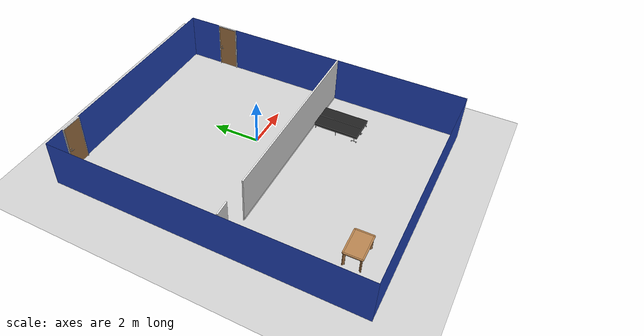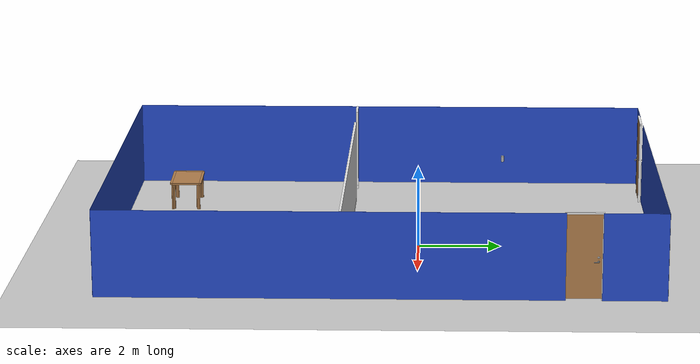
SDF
<sdf version="1.6">
 <world name="default">
  <physics name="default_physics" default="0" type="ode">
   <max_step_size>0.001</max_step_size>
   <real_time_factor>1</real_time_factor>
   <real_time_update_rate>1000</real_time_update_rate>
  </physics>
  <light name="sun" type="directional">
   <pose>0 0 10 0 -0 0</pose>
   <diffuse>0.8 0.8 0.8 1</diffuse>
   <specular>0.2 0.2 0.2 1</specular>
   <attenuation>
    <range>1000</range>
    <constant>0.9</constant>
    <linear>0.01</linear>
    <quadratic>0.001</quadratic>
   </attenuation>
   <direction>-0.5 0.1 -0.9</direction>
  </light>
  <model name="ground_plane">
   <static>1</static>
   <link name="link">
    <collision name="collision">
     <geometry><plane><normal>0 0 1</normal><size>100 100</size></plane></geometry>
     <surface>
      <contact><collide_bitmask>65535</collide_bitmask></contact>
      <friction><ode><mu>100</mu><mu2>50</mu2></ode></friction>
     </surface>
    </collision>
    <visual name="visual">
     <cast_shadows>0</cast_shadows>
     <geometry><plane><normal>0 0 1</normal><size>100 100</size></plane></geometry>
     <material>
      <script><uri>file://media/materials/scripts/gazebo.material</uri><name>Gazebo/Grey</name></script>
     </material>
    </visual>
   </link>
  </model>
  <gravity>0 0 -9.8</gravity>
  <magnetic_field>6e-06 2.3e-05 -4.2e-05</magnetic_field>
  <atmosphere type="adiabatic"/>
  <scene><ambient>0.4 0.4 0.4 1</ambient><background>0.7 0.7 0.7 1</background><shadows>1</shadows></scene>
  <spherical_coordinates>
   <surface_model>EARTH_WGS84</surface_model>
   <latitude_deg>0</latitude_deg>
   <longitude_deg>0</longitude_deg>
   <elevation>0</elevation>
   <heading_deg>0</heading_deg>
  </spherical_coordinates>
  <model name="apartment_wall_collision">
   <link name="link">
    <inertial>
     <mass>50</mass>
     <inertia><ixx>1</ixx><ixy>0</ixy><ixz>0</ixz><iyy>1</iyy><iyz>0</iyz><izz>1</izz></inertia>
    </inertial>
    <visual name="wall_x00y00_x00y15">
     <pose>-0.002 6.59 1.04 0 -0 0</pose>
     <geometry><box><size>0.002 13.2 2.08</size></box></geometry>
     <material>
      <script>
       <uri>model://base_materials/color/scripts</uri>
       <name>hsr_color/cornflowerblue_transparency1</name>
      </script>
     </material>
    </visual>
    <collision name="wall_x00y00_x00y15">
     <pose>-0.002 6.59 1.04 0 -0 0</pose>
     <geometry><box><size>0.002 13.2 2.08</size></box></geometry>
    </collision>
    <visual name="wall_x00y00_x13y00">
     <pose>5.0375 -0.002 1.04 0 -0 0</pose>
     <geometry><box><size>10.08 0.002 2.08</size></box></geometry>
     <material>
      <script>
       <uri>model://base_materials/color/scripts</uri>
       <name>hsr_color/cornflowerblue_transparency1</name>
      </script>
     </material>
    </visual>
    <collision name="wall_x00y00_x13y00">
     <pose>5.0375 -0.002 1.04 0 -0 0</pose>
     <geometry><box><size>10.08 0.002 2.08</size></box></geometry>
    </collision>
    <visual name="wall_x13y00_x13y12">
     <pose>10.077 5.42 1.04 0 -0 0</pose>
     <geometry><box><size>0.002 10.84 2.08</size></box></geometry>
     <material>
      <script>
       <uri>model://base_materials/color/scripts</uri>
       <name>hsr_color/cornflowerblue_transparency1</name>
      </script>
     </material>
    </visual>
    <collision name="wall_x13y00_x13y12">
     <pose>10.077 5.42 1.04 0 -0 0</pose>
     <geometry><box><size>0.002 10.84 2.08</size></box></geometry>
    </collision>
    <visual name="wall_x13y14_x13y16">
     <pose>10.077 12.43 1.04 0 -0 0</pose>
     <geometry><box><size>0.002 1.5 2.08</size></box></geometry>
     <material>
      <script>
       <uri>model://base_materials/color/scripts</uri>
       <name>hsr_color/cornflowerblue_transparency1</name>
      </script>
     </material>
    </visual>
    <collision name="wall_x13y14_x13y16">
     <pose>10.077 12.43 1.04 0 -0 0</pose>
     <geometry><box><size>0.002 1.5 2.08</size></box></geometry>
    </collision>
    <visual name="wall_x00y16_x01y16">
     <pose>0.4525 13.182 1.04 0 -0 0</pose>
     <geometry><box><size>0.904 0.002 2.08</size></box></geometry>
     <material>
      <script>
       <uri>model://base_materials/color/scripts</uri>
       <name>hsr_color/cornflowerblue_transparency1</name>
      </script>
     </material>
    </visual>
    <collision name="wall_x00y16_x01y16">
     <pose>0.4525 13.182 1.04 0 -0 0</pose>
     <geometry><box><size>0.904 0.002 2.08</size></box></geometry>
    </collision>
    <visual name="wall_x03y16_x13y16">
     <pose>5.948 13.182 1.04 0 -0 0</pose>
     <geometry><box><size>8.3 0.002 2.08</size></box></geometry>
     <material>
      <script>
       <uri>model://base_materials/color/scripts</uri>
       <name>hsr_color/cornflowerblue_transparency1</name>
      </script>
     </material>
    </visual>
    <collision name="wall_x03y16_x13y16">
     <pose>5.948 13.182 1.04 0 -0 0</pose>
     <geometry><box><size>8.3 0.002 2.08</size></box></geometry>
    </collision>
    <velocity_decay><linear>0</linear><angular>0</angular></velocity_decay>
   </link>
   <static>1</static>
   <pose>-5.8556 -7.42977 0 0 -0 0</pose>
  </model>
  <model name="full_wall_55_8295_2090">
   <link name="link">
    <inertial>
     <mass>50</mass>
     <inertia><ixx>1</ixx><ixy>0</ixy><ixz>0</ixz><iyy>1</iyy><iyz>0</iyz><izz>1</izz></inertia>
    </inertial>
    <visual name="bottom_frame">
     <pose>0 0 0.05 0 -0 0</pose>
     <geometry><box><size>0.055 8.295 0.1</size></box></geometry>
     <material>
      <script><uri>model://base_materials/color/scripts</uri><name>hsr_color/white</name></script>
     </material>
    </visual>
    <collision name="collision_bottom_frame">
     <pose>0 0 0.05 0 -0 0</pose>
     <geometry><box><size>0.055 8.295 0.1</size></box></geometry>
    </collision>
    <visual name="wall">
     <pose>0 0 1.095 0 -0 0</pose>
     <geometry><box><size>0.055 8.295 1.99</size></box></geometry>
     <material>
      <script>
       <uri>model://base_materials/wall/scripts</uri>
       <uri>model://base_materials/wall/textures</uri>
       <name>wall/white_noise</name>
      </script>
     </material>
    </visual>
    <collision name="collision_wall">
     <pose>0 0 1.095 0 -0 0</pose>
     <geometry><box><size>0.055 8.295 1.99</size></box></geometry>
    </collision>
    <velocity_decay><linear>0</linear><angular>0</angular></velocity_decay>
   </link>
   <static>1</static>
   <pose>0.058806 -1.71093 0 0 0 -1.57756</pose>
  </model>
  <model name="full_wall_55_640_2090">
   <link name="link">
    <inertial>
     <mass>50</mass>
     <inertia><ixx>1</ixx><ixy>0</ixy><ixz>0</ixz><iyy>1</iyy><iyz>0</iyz><izz>1</izz></inertia>
    </inertial>
    <visual name="bottom_frame">
     <pose>0 0 0.05 0 -0 0</pose>
     <geometry><box><size>0.055 0.64 0.1</size></box></geometry>
     <material>
      <script><uri>model://base_materials/color/scripts</uri><name>hsr_color/white</name></script>
     </material>
    </visual>
    <collision name="collision_bottom_frame">
     <pose>0 0 0.05 0 -0 0</pose>
     <geometry><box><size>0.055 0.64 0.1</size></box></geometry>
    </collision>
    <visual name="wall">
     <pose>0 0 1.095 0 -0 0</pose>
     <geometry><box><size>0.055 0.64 1.99</size></box></geometry>
     <material>
      <script>
       <uri>model://base_materials/wall/scripts</uri>
       <uri>model://base_materials/wall/textures</uri>
       <name>wall/white_noise</name>
      </script>
     </material>
    </visual>
    <collision name="collision_wall">
     <pose>0 0 1.095 0 -0 0</pose>
     <geometry><box><size>0.055 0.64 1.99</size></box></geometry>
    </collision>
    <velocity_decay><linear>0</linear><angular>0</angular></velocity_decay>
   </link>
   <static>1</static>
   <pose>-5.50318 -1.68334 0 0 0 -1.55081</pose>
  </model>
  <model name="sprite">
   <static>0</static>
   <link name="link">
    <inertial>
     <mass>0.25</mass>
     <inertia><ixx>0</ixx><ixy>0</ixy><ixz>0</ixz><iyy>0</iyy><iyz>0</iyz><izz>0</izz></inertia>
    </inertial>
    <collision name="collision">
     <pose>0 0 0.075 -3.14159 -0 0</pose>
     <geometry><cylinder><radius>0.04</radius><length>0.15</length></cylinder></geometry>
    </collision>
    <visual name="visual">
     <pose>0 0 0.075 -3.14159 -0 0</pose>
     <geometry><cylinder><radius>0.04</radius><length>0.15</length></cylinder></geometry>
     <material>
      <script>
       <uri>model://sprite/material/scripts</uri>
       <uri>model://sprite/material/textures</uri>
       <name>Custom/sprite</name>
      </script>
     </material>
    </visual>
    <velocity_decay><linear>0</linear><angular>0</angular></velocity_decay>
   </link>
   <pose>-5.15373 2.16465 0.774993 -5e-06 -4e-05 -4e-06</pose>
  </model>
  <model name="bed">
   <link name="link">
    <inertial>
     <mass>10</mass>
     <inertia><ixx>1</ixx><ixy>0</ixy><ixz>0</ixz><iyy>1</iyy><iyz>0</iyz><izz>1</izz></inertia>
    </inertial>
    <visual name="cushion">
     <pose>-0.295 -0.975 0.2875 0 -0 0</pose>
     <geometry><box><size>0.59 1.95 0.095</size></box></geometry>
     <material>
      <script>
       <uri>model://base_materials/cloth/scripts</uri>
       <uri>model://base_materials/cloth/textures</uri>
       <name>cloth/black</name>
      </script>
     </material>
    </visual>
    <collision name="collision_cushion">
     <pose>-0.295 -0.975 0.2875 0 -0 0</pose>
     <geometry><box><size>0.59 1.95 0.095</size></box></geometry>
    </collision>
    <visual name="top_frame">
     <pose>-0.295 -0.975 0.225 0 -0 0</pose>
     <geometry><box><size>0.59 1.95 0.03</size></box></geometry>
     <material>
      <script><uri>model://base_materials/color/scripts</uri><name>hsr_color/grey</name></script>
     </material>
    </visual>
    <collision name="collision_top_frame">
     <pose>-0.295 -0.975 0.225 0 -0 0</pose>
     <geometry><box><size>0.59 1.95 0.03</size></box></geometry>
    </collision>
    <visual name="right_front_pole">
     <pose>-0.075 -0.0125 0.125 0 -0 0</pose>
     <geometry><cylinder><radius>0.0125</radius><length>0.17</length></cylinder></geometry>
     <material>
      <script><uri>model://base_materials/color/scripts</uri><name>hsr_color/grey</name></script>
     </material>
    </visual>
    <collision name="collision_right_front_pole">
     <pose>-0.075 -0.0125 0.125 0 -0 0</pose>
     <geometry><cylinder><radius>0.0125</radius><length>0.17</length></cylinder></geometry>
    </collision>
    <visual name="right_front_caster">
     <pose>-0.075 -0.0125 0.02 0 1.57 0</pose>
     <geometry><cylinder><radius>0.02</radius><length>0.04</length></cylinder></geometry>
     <material><script><name>Gazebo/Black</name><uri>__default__</uri></script></material>
    </visual>
    <collision name="collision_right_front_caster">
     <pose>-0.075 -0.0125 0.02 0 1.57 0</pose>
     <geometry><cylinder><radius>0.02</radius><length>0.04</length></cylinder></geometry>
    </collision>
    <visual name="right_back_pole">
     <pose>-0.46 -0.0125 0.125 0 -0 0</pose>
     <geometry><cylinder><radius>0.0125</radius><length>0.17</length></cylinder></geometry>
     <material>
      <script><uri>model://base_materials/color/scripts</uri><name>hsr_color/grey</name></script>
     </material>
    </visual>
    <collision name="collision_right_back_pole">
     <pose>-0.46 -0.0125 0.125 0 -0 0</pose>
     <geometry><cylinder><radius>0.0125</radius><length>0.17</length></cylinder></geometry>
    </collision>
    <visual name="right_back_caster">
     <pose>-0.46 -0.0125 0.02 0 1.57 0</pose>
     <geometry><cylinder><radius>0.02</radius><length>0.04</length></cylinder></geometry>
     <material><script><name>Gazebo/Black</name><uri>__default__</uri></script></material>
    </visual>
    <collision name="collision_back_front_caster">
     <pose>-0.46 -0.0125 0.02 0 1.57 0</pose>
     <geometry><cylinder><radius>0.02</radius><length>0.04</length></cylinder></geometry>
    </collision>
    <visual name="center_front_pole">
     <pose>-0.0425 -0.975 0.105 0 -0 0</pose>
     <geometry><cylinder><radius>0.0125</radius><length>0.21</length></cylinder></geometry>
     <material>
      <script><uri>model://base_materials/color/scripts</uri><name>hsr_color/grey</name></script>
     </material>
    </visual>
    <collision name="collision_center_front_pole">
     <pose>-0.0425 -0.975 0.105 0 -0 0</pose>
     <geometry><cylinder><radius>0.0125</radius><length>0.17</length></cylinder></geometry>
    </collision>
    <visual name="center_back_pole">
     <pose>-0.5475 -0.975 0.105 0 -0 0</pose>
     <geometry><cylinder><radius>0.0125</radius><length>0.21</length></cylinder></geometry>
     <material>
      <script><uri>model://base_materials/color/scripts</uri><name>hsr_color/grey</name></script>
     </material>
    </visual>
    <collision name="collision_center_back_pole">
     <pose>-0.5475 -0.975 0.105 0 -0 0</pose>
     <geometry><cylinder><radius>0.0125</radius><length>0.17</length></cylinder></geometry>
    </collision>
    <visual name="left_front_horizon_pole">
     <pose>-0.01 -1.825 0.06 1.57 -0 0</pose>
     <geometry><cylinder><radius>0.01</radius><length>0.25</length></cylinder></geometry>
     <material>
      <script><uri>model://base_materials/color/scripts</uri><name>hsr_color/grey</name></script>
     </material>
    </visual>
    <collision name="collision_left_front_horizon_pole">
     <pose>-0.01 -1.825 0.06 1.57 -0 0</pose>
     <geometry><cylinder><radius>0.01</radius><length>0.25</length></cylinder></geometry>
    </collision>
    <visual name="left_front_vertical_pole">
     <pose>-0.01 -1.825 0.14 0 -0 0</pose>
     <geometry><cylinder><radius>0.01</radius><length>0.14</length></cylinder></geometry>
     <material>
      <script><uri>model://base_materials/color/scripts</uri><name>hsr_color/grey</name></script>
     </material>
    </visual>
    <collision name="collision_left_front_vertical_pole">
     <pose>-0.01 -1.825 0.14 0 -0 0</pose>
     <geometry><cylinder><radius>0.01</radius><length>0.14</length></cylinder></geometry>
    </collision>
    <visual name="left_front_caster_r">
     <pose>-0.02 -1.725 0.025 0 1.57 0</pose>
     <geometry><cylinder><radius>0.025</radius><length>0.04</length></cylinder></geometry>
     <material><script><name>Gazebo/Black</name><uri>__default__</uri></script></material>
    </visual>
    <collision name="collision_left_front_caster_r">
     <pose>-0.02 -1.725 0.025 0 1.57 0</pose>
     <geometry><cylinder><radius>0.025</radius><length>0.04</length></cylinder></geometry>
    </collision>
    <visual name="left_front_caster_l">
     <pose>-0.02 -1.925 0.025 0 1.57 0</pose>
     <geometry><cylinder><radius>0.025</radius><length>0.04</length></cylinder></geometry>
     <material><script><name>Gazebo/Black</name><uri>__default__</uri></script></material>
    </visual>
    <collision name="collision_left_front_caster_l">
     <pose>-0.02 -1.925 0.025 0 1.57 0</pose>
     <geometry><cylinder><radius>0.025</radius><length>0.04</length></cylinder></geometry>
    </collision>
    <visual name="left_back_horizon_pole">
     <pose>-0.58 -1.825 0.06 1.57 -0 0</pose>
     <geometry><cylinder><radius>0.01</radius><length>0.25</length></cylinder></geometry>
     <material>
      <script><uri>model://base_materials/color/scripts</uri><name>hsr_color/grey</name></script>
     </material>
    </visual>
    <collision name="collision_left_back_horizon_pole">
     <pose>-0.58 -1.825 0.06 1.57 -0 0</pose>
     <geometry><cylinder><radius>0.01</radius><length>0.25</length></cylinder></geometry>
    </collision>
    <visual name="left_back_vertical_pole">
     <pose>-0.58 -1.825 0.14 0 -0 0</pose>
     <geometry><cylinder><radius>0.01</radius><length>0.14</length></cylinder></geometry>
     <material>
      <script><uri>model://base_materials/color/scripts</uri><name>hsr_color/grey</name></script>
     </material>
    </visual>
    <collision name="collision_left_back_vertical_pole">
     <pose>-0.58 -1.825 0.14 0 -0 0</pose>
     <geometry><cylinder><radius>0.01</radius><length>0.14</length></cylinder></geometry>
    </collision>
    <visual name="left_back_caster_r">
     <pose>-0.57 -1.725 0.025 0 1.57 0</pose>
     <geometry><cylinder><radius>0.025</radius><length>0.04</length></cylinder></geometry>
     <material><script><name>Gazebo/Black</name><uri>__default__</uri></script></material>
    </visual>
    <collision name="collision_left_back_caster_r">
     <pose>-0.57 -1.725 0.025 0 1.57 0</pose>
     <geometry><cylinder><radius>0.025</radius><length>0.04</length></cylinder></geometry>
    </collision>
    <visual name="left_back_caster_l">
     <pose>-0.57 -1.925 0.025 0 1.57 0</pose>
     <geometry><cylinder><radius>0.025</radius><length>0.04</length></cylinder></geometry>
     <material><script><name>Gazebo/Black</name><uri>__default__</uri></script></material>
    </visual>
    <collision name="collision_left_back_caster_l">
     <pose>-0.57 -1.925 0.025 0 1.57 0</pose>
     <geometry><cylinder><radius>0.025</radius><length>0.04</length></cylinder></geometry>
    </collision>
    <velocity_decay><linear>0</linear><angular>0</angular></velocity_decay>
   </link>
   <static>1</static>
   <pose>2.42306 -1.83428 0 0 -0 0</pose>
  </model>
  <model name="bed_0">
   <link name="link">
    <inertial>
     <mass>10</mass>
     <inertia><ixx>1</ixx><ixy>0</ixy><ixz>0</ixz><iyy>1</iyy><iyz>0</iyz><izz>1</izz></inertia>
    </inertial>
    <visual name="cushion">
     <pose>-0.295 -0.975 0.2875 0 -0 0</pose>
     <geometry><box><size>0.59 1.95 0.095</size></box></geometry>
     <material>
      <script>
       <uri>model://base_materials/cloth/scripts</uri>
       <uri>model://base_materials/cloth/textures</uri>
       <name>cloth/black</name>
      </script>
     </material>
    </visual>
    <collision name="collision_cushion">
     <pose>-0.295 -0.975 0.2875 0 -0 0</pose>
     <geometry><box><size>0.59 1.95 0.095</size></box></geometry>
    </collision>
    <visual name="top_frame">
     <pose>-0.295 -0.975 0.225 0 -0 0</pose>
     <geometry><box><size>0.59 1.95 0.03</size></box></geometry>
     <material>
      <script><uri>model://base_materials/color/scripts</uri><name>hsr_color/grey</name></script>
     </material>
    </visual>
    <collision name="collision_top_frame">
     <pose>-0.295 -0.975 0.225 0 -0 0</pose>
     <geometry><box><size>0.59 1.95 0.03</size></box></geometry>
    </collision>
    <visual name="right_front_pole">
     <pose>-0.075 -0.0125 0.125 0 -0 0</pose>
     <geometry><cylinder><radius>0.0125</radius><length>0.17</length></cylinder></geometry>
     <material>
      <script><uri>model://base_materials/color/scripts</uri><name>hsr_color/grey</name></script>
     </material>
    </visual>
    <collision name="collision_right_front_pole">
     <pose>-0.075 -0.0125 0.125 0 -0 0</pose>
     <geometry><cylinder><radius>0.0125</radius><length>0.17</length></cylinder></geometry>
    </collision>
    <visual name="right_front_caster">
     <pose>-0.075 -0.0125 0.02 0 1.57 0</pose>
     <geometry><cylinder><radius>0.02</radius><length>0.04</length></cylinder></geometry>
     <material><script><name>Gazebo/Black</name><uri>__default__</uri></script></material>
    </visual>
    <collision name="collision_right_front_caster">
     <pose>-0.075 -0.0125 0.02 0 1.57 0</pose>
     <geometry><cylinder><radius>0.02</radius><length>0.04</length></cylinder></geometry>
    </collision>
    <visual name="right_back_pole">
     <pose>-0.46 -0.0125 0.125 0 -0 0</pose>
     <geometry><cylinder><radius>0.0125</radius><length>0.17</length></cylinder></geometry>
     <material>
      <script><uri>model://base_materials/color/scripts</uri><name>hsr_color/grey</name></script>
     </material>
    </visual>
    <collision name="collision_right_back_pole">
     <pose>-0.46 -0.0125 0.125 0 -0 0</pose>
     <geometry><cylinder><radius>0.0125</radius><length>0.17</length></cylinder></geometry>
    </collision>
    <visual name="right_back_caster">
     <pose>-0.46 -0.0125 0.02 0 1.57 0</pose>
     <geometry><cylinder><radius>0.02</radius><length>0.04</length></cylinder></geometry>
     <material><script><name>Gazebo/Black</name><uri>__default__</uri></script></material>
    </visual>
    <collision name="collision_back_front_caster">
     <pose>-0.46 -0.0125 0.02 0 1.57 0</pose>
     <geometry><cylinder><radius>0.02</radius><length>0.04</length></cylinder></geometry>
    </collision>
    <visual name="center_front_pole">
     <pose>-0.0425 -0.975 0.105 0 -0 0</pose>
     <geometry><cylinder><radius>0.0125</radius><length>0.21</length></cylinder></geometry>
     <material>
      <script><uri>model://base_materials/color/scripts</uri><name>hsr_color/grey</name></script>
     </material>
    </visual>
    <collision name="collision_center_front_pole">
     <pose>-0.0425 -0.975 0.105 0 -0 0</pose>
     <geometry><cylinder><radius>0.0125</radius><length>0.17</length></cylinder></geometry>
    </collision>
    <visual name="center_back_pole">
     <pose>-0.5475 -0.975 0.105 0 -0 0</pose>
     <geometry><cylinder><radius>0.0125</radius><length>0.21</length></cylinder></geometry>
     <material>
      <script><uri>model://base_materials/color/scripts</uri><name>hsr_color/grey</name></script>
     </material>
    </visual>
    <collision name="collision_center_back_pole">
     <pose>-0.5475 -0.975 0.105 0 -0 0</pose>
     <geometry><cylinder><radius>0.0125</radius><length>0.17</length></cylinder></geometry>
    </collision>
    <visual name="left_front_horizon_pole">
     <pose>-0.01 -1.825 0.06 1.57 -0 0</pose>
     <geometry><cylinder><radius>0.01</radius><length>0.25</length></cylinder></geometry>
     <material>
      <script><uri>model://base_materials/color/scripts</uri><name>hsr_color/grey</name></script>
     </material>
    </visual>
    <collision name="collision_left_front_horizon_pole">
     <pose>-0.01 -1.825 0.06 1.57 -0 0</pose>
     <geometry><cylinder><radius>0.01</radius><length>0.25</length></cylinder></geometry>
    </collision>
    <visual name="left_front_vertical_pole">
     <pose>-0.01 -1.825 0.14 0 -0 0</pose>
     <geometry><cylinder><radius>0.01</radius><length>0.14</length></cylinder></geometry>
     <material>
      <script><uri>model://base_materials/color/scripts</uri><name>hsr_color/grey</name></script>
     </material>
    </visual>
    <collision name="collision_left_front_vertical_pole">
     <pose>-0.01 -1.825 0.14 0 -0 0</pose>
     <geometry><cylinder><radius>0.01</radius><length>0.14</length></cylinder></geometry>
    </collision>
    <visual name="left_front_caster_r">
     <pose>-0.02 -1.725 0.025 0 1.57 0</pose>
     <geometry><cylinder><radius>0.025</radius><length>0.04</length></cylinder></geometry>
     <material><script><name>Gazebo/Black</name><uri>__default__</uri></script></material>
    </visual>
    <collision name="collision_left_front_caster_r">
     <pose>-0.02 -1.725 0.025 0 1.57 0</pose>
     <geometry><cylinder><radius>0.025</radius><length>0.04</length></cylinder></geometry>
    </collision>
    <visual name="left_front_caster_l">
     <pose>-0.02 -1.925 0.025 0 1.57 0</pose>
     <geometry><cylinder><radius>0.025</radius><length>0.04</length></cylinder></geometry>
     <material><script><name>Gazebo/Black</name><uri>__default__</uri></script></material>
    </visual>
    <collision name="collision_left_front_caster_l">
     <pose>-0.02 -1.925 0.025 0 1.57 0</pose>
     <geometry><cylinder><radius>0.025</radius><length>0.04</length></cylinder></geometry>
    </collision>
    <visual name="left_back_horizon_pole">
     <pose>-0.58 -1.825 0.06 1.57 -0 0</pose>
     <geometry><cylinder><radius>0.01</radius><length>0.25</length></cylinder></geometry>
     <material>
      <script><uri>model://base_materials/color/scripts</uri><name>hsr_color/grey</name></script>
     </material>
    </visual>
    <collision name="collision_left_back_horizon_pole">
     <pose>-0.58 -1.825 0.06 1.57 -0 0</pose>
     <geometry><cylinder><radius>0.01</radius><length>0.25</length></cylinder></geometry>
    </collision>
    <visual name="left_back_vertical_pole">
     <pose>-0.58 -1.825 0.14 0 -0 0</pose>
     <geometry><cylinder><radius>0.01</radius><length>0.14</length></cylinder></geometry>
     <material>
      <script><uri>model://base_materials/color/scripts</uri><name>hsr_color/grey</name></script>
     </material>
    </visual>
    <collision name="collision_left_back_vertical_pole">
     <pose>-0.58 -1.825 0.14 0 -0 0</pose>
     <geometry><cylinder><radius>0.01</radius><length>0.14</length></cylinder></geometry>
    </collision>
    <visual name="left_back_caster_r">
     <pose>-0.57 -1.725 0.025 0 1.57 0</pose>
     <geometry><cylinder><radius>0.025</radius><length>0.04</length></cylinder></geometry>
     <material><script><name>Gazebo/Black</name><uri>__default__</uri></script></material>
    </visual>
    <collision name="collision_left_back_caster_r">
     <pose>-0.57 -1.725 0.025 0 1.57 0</pose>
     <geometry><cylinder><radius>0.025</radius><length>0.04</length></cylinder></geometry>
    </collision>
    <visual name="left_back_caster_l">
     <pose>-0.57 -1.925 0.025 0 1.57 0</pose>
     <geometry><cylinder><radius>0.025</radius><length>0.04</length></cylinder></geometry>
     <material><script><name>Gazebo/Black</name><uri>__default__</uri></script></material>
    </visual>
    <collision name="collision_left_back_caster_l">
     <pose>-0.57 -1.925 0.025 0 1.57 0</pose>
     <geometry><cylinder><radius>0.025</radius><length>0.04</length></cylinder></geometry>
    </collision>
    <velocity_decay><linear>0</linear><angular>0</angular></velocity_decay>
   </link>
   <static>1</static>
   <pose>3.03603 -1.84016 0 0 -0 0</pose>
  </model>
  <model name="kitchen_table">
   <link name="link">
    <inertial>
     <mass>10</mass>
     <inertia><ixx>1</ixx><ixy>0</ixy><ixz>0</ixz><iyy>1</iyy><iyz>0</iyz><izz>1</izz></inertia>
    </inertial>
    <visual name="center_board">
     <pose>0 0 0.68 0 -0 0</pose>
     <geometry><box><size>0.68 1.13 0.04</size></box></geometry>
     <material>
      <script><uri>model://base_materials/wood/scripts/wood.material</uri><name>base_materials/wood</name></script>
     </material>
    </visual>
    <collision name="collision_center_board">
     <pose>0 0 0.68 0 -0 0</pose>
     <geometry><box><size>0.68 1.13 0.04</size></box></geometry>
    </collision>
    <visual name="front_board">
     <pose>0.37 0 0.68 0 -0 0</pose>
     <geometry><box><size>0.06 1.13 0.04</size></box></geometry>
     <material>
      <script><uri>model://base_materials/wood/scripts/wood.material</uri><name>base_materials/wood</name></script>
     </material>
    </visual>
    <collision name="collision_front_board">
     <pose>0.37 0 0.68 0 -0 0</pose>
     <geometry><box><size>0.06 1.13 0.04</size></box></geometry>
    </collision>
    <visual name="back_board">
     <pose>-0.37 0 0.68 0 -0 0</pose>
     <geometry><box><size>0.06 1.13 0.04</size></box></geometry>
     <material>
      <script><uri>model://base_materials/wood/scripts/wood.material</uri><name>base_materials/wood</name></script>
     </material>
    </visual>
    <collision name="collision_back_board">
     <pose>-0.37 0 0.68 0 -0 0</pose>
     <geometry><box><size>0.06 1.13 0.04</size></box></geometry>
    </collision>
    <visual name="right_board">
     <pose>0 0.595 0.68 0 -0 0</pose>
     <geometry><box><size>0.68 0.06 0.04</size></box></geometry>
     <material>
      <script><uri>model://base_materials/wood/scripts/wood.material</uri><name>base_materials/wood</name></script>
     </material>
    </visual>
    <collision name="collision_right_board">
     <pose>0 0.595 0.68 0 -0 0</pose>
     <geometry><box><size>0.68 0.06 0.04</size></box></geometry>
    </collision>
    <visual name="left_board">
     <pose>0 -0.595 0.68 0 -0 0</pose>
     <geometry><box><size>0.68 0.06 0.04</size></box></geometry>
     <material>
      <script><uri>model://base_materials/wood/scripts/wood.material</uri><name>base_materials/wood</name></script>
     </material>
    </visual>
    <collision name="collision_left_board">
     <pose>0 -0.595 0.68 0 -0 0</pose>
     <geometry><box><size>0.68 0.06 0.04</size></box></geometry>
    </collision>
    <visual name="front_right_corner_board">
     <pose>0.34 0.565 0.68 0 -0 0</pose>
     <geometry><cylinder><radius>0.06</radius><length>0.039</length></cylinder></geometry>
     <material>
      <script><uri>model://base_materials/wood/scripts/wood.material</uri><name>base_materials/wood</name></script>
     </material>
    </visual>
    <collision name="collision_front_right_corner_board">
     <pose>0.34 0.565 0.68 0 -0 0</pose>
     <geometry><cylinder><radius>0.06</radius><length>0.039</length></cylinder></geometry>
    </collision>
    <visual name="front_left_corner_board">
     <pose>0.34 -0.565 0.68 0 -0 0</pose>
     <geometry><cylinder><radius>0.06</radius><length>0.039</length></cylinder></geometry>
     <material>
      <script><uri>model://base_materials/wood/scripts/wood.material</uri><name>base_materials/wood</name></script>
     </material>
    </visual>
    <collision name="collision_front_left_corner_board">
     <pose>0.34 -0.565 0.68 0 -0 0</pose>
     <geometry><cylinder><radius>0.06</radius><length>0.039</length></cylinder></geometry>
    </collision>
    <visual name="front_back_right_corner_board">
     <pose>-0.34 0.565 0.68 0 -0 0</pose>
     <geometry><cylinder><radius>0.06</radius><length>0.039</length></cylinder></geometry>
     <material>
      <script><uri>model://base_materials/wood/scripts/wood.material</uri><name>base_materials/wood</name></script>
     </material>
    </visual>
    <collision name="collision_back_right_corner_board">
     <pose>-0.34 0.565 0.68 0 -0 0</pose>
     <geometry><cylinder><radius>0.06</radius><length>0.039</length></cylinder></geometry>
    </collision>
    <visual name="front_back_left_corner_board">
     <pose>-0.34 -0.565 0.68 0 -0 0</pose>
     <geometry><cylinder><radius>0.06</radius><length>0.039</length></cylinder></geometry>
     <material>
      <script><uri>model://base_materials/wood/scripts/wood.material</uri><name>base_materials/wood</name></script>
     </material>
    </visual>
    <collision name="collision_back_left_corner_board">
     <pose>-0.34 -0.565 0.68 0 -0 0</pose>
     <geometry><cylinder><radius>0.06</radius><length>0.039</length></cylinder></geometry>
    </collision>
    <visual name="front_left_corner_frame1">
     <pose>0.345858 -0.57086 0.33 0 -0 0</pose>
     <geometry><cylinder><radius>0.02</radius><length>0.66</length></cylinder></geometry>
     <material>
      <script><uri>model://base_materials/wood/scripts/wood.material</uri><name>base_materials/wood</name></script>
     </material>
    </visual>
    <collision name="collision_front_left_corner_frame1">
     <pose>0.345858 -0.57086 0.33 0 -0 0</pose>
     <geometry><cylinder><radius>0.02</radius><length>0.66</length></cylinder></geometry>
    </collision>
    <visual name="front_left_corner_frame2">
     <pose>0.317574 -0.54257 0.33 0 -0 0.7854</pose>
     <geometry><box><size>0.04 0.08 0.66</size></box></geometry>
     <material>
      <script><uri>model://base_materials/wood/scripts/wood.material</uri><name>base_materials/wood</name></script>
     </material>
    </visual>
    <collision name="collision_front_left_corner_frame2">
     <pose>0.317574 -0.54257 0.33 0 -0 0.7854</pose>
     <geometry><box><size>0.04 0.08 0.66</size></box></geometry>
    </collision>
    <visual name="front_left_corner_frame3">
     <pose>0.289289 -0.51429 0.33 0 -0 0</pose>
     <geometry><cylinder><radius>0.02</radius><length>0.66</length></cylinder></geometry>
     <material>
      <script><uri>model://base_materials/wood/scripts/wood.material</uri><name>base_materials/wood</name></script>
     </material>
    </visual>
    <collision name="collision_front_left_corner_frame3">
     <pose>0.289289 -0.51429 0.33 0 -0 0</pose>
     <geometry><cylinder><radius>0.02</radius><length>0.66</length></cylinder></geometry>
    </collision>
    <visual name="front_right_corner_frame1">
     <pose>0.345858 0.57086 0.33 0 -0 0</pose>
     <geometry><cylinder><radius>0.02</radius><length>0.66</length></cylinder></geometry>
     <material>
      <script><uri>model://base_materials/wood/scripts/wood.material</uri><name>base_materials/wood</name></script>
     </material>
    </visual>
    <collision name="collision_front_right_corner_frame1">
     <pose>0.345858 0.57086 0.33 0 -0 0</pose>
     <geometry><cylinder><radius>0.02</radius><length>0.66</length></cylinder></geometry>
    </collision>
    <visual name="front_right_corner_frame2">
     <pose>0.317574 0.54257 0.33 0 0 -0.7854</pose>
     <geometry><box><size>0.04 0.08 0.66</size></box></geometry>
     <material>
      <script><uri>model://base_materials/wood/scripts/wood.material</uri><name>base_materials/wood</name></script>
     </material>
    </visual>
    <collision name="collision_front_right_corner_frame2">
     <pose>0.317574 0.54257 0.33 0 0 -0.7854</pose>
     <geometry><box><size>0.04 0.08 0.66</size></box></geometry>
    </collision>
    <visual name="front_right_corner_frame3">
     <pose>0.289289 0.51429 0.33 0 -0 0</pose>
     <geometry><cylinder><radius>0.02</radius><length>0.66</length></cylinder></geometry>
     <material>
      <script><uri>model://base_materials/wood/scripts/wood.material</uri><name>base_materials/wood</name></script>
     </material>
    </visual>
    <collision name="collision_front_right_corner_frame3">
     <pose>0.289289 0.51429 0.33 0 -0 0</pose>
     <geometry><cylinder><radius>0.02</radius><length>0.66</length></cylinder></geometry>
    </collision>
    <visual name="back_left_corner_frame1">
     <pose>-0.345858 -0.57086 0.33 0 -0 0</pose>
     <geometry><cylinder><radius>0.02</radius><length>0.66</length></cylinder></geometry>
     <material>
      <script><uri>model://base_materials/wood/scripts/wood.material</uri><name>base_materials/wood</name></script>
     </material>
    </visual>
    <collision name="collision_back_left_corner_frame1">
     <pose>-0.345858 -0.57086 0.33 0 -0 0</pose>
     <geometry><cylinder><radius>0.02</radius><length>0.66</length></cylinder></geometry>
    </collision>
    <visual name="back_left_corner_frame2">
     <pose>-0.317574 -0.54257 0.33 0 0 -0.7854</pose>
     <geometry><box><size>0.04 0.08 0.66</size></box></geometry>
     <material>
      <script><uri>model://base_materials/wood/scripts/wood.material</uri><name>base_materials/wood</name></script>
     </material>
    </visual>
    <collision name="collision_back_left_corner_frame2">
     <pose>-0.317574 -0.54257 0.33 0 0 -0.7854</pose>
     <geometry><box><size>0.04 0.08 0.66</size></box></geometry>
    </collision>
    <visual name="back_left_corner_frame3">
     <pose>-0.289289 -0.51429 0.33 0 -0 0</pose>
     <geometry><cylinder><radius>0.02</radius><length>0.66</length></cylinder></geometry>
     <material>
      <script><uri>model://base_materials/wood/scripts/wood.material</uri><name>base_materials/wood</name></script>
     </material>
    </visual>
    <collision name="collision_back_left_corner_frame3">
     <pose>-0.289289 -0.51429 0.33 0 -0 0</pose>
     <geometry><cylinder><radius>0.02</radius><length>0.66</length></cylinder></geometry>
    </collision>
    <visual name="back_right_corner_frame1">
     <pose>-0.345858 0.57086 0.33 0 -0 0</pose>
     <geometry><cylinder><radius>0.02</radius><length>0.66</length></cylinder></geometry>
     <material>
      <script><uri>model://base_materials/wood/scripts/wood.material</uri><name>base_materials/wood</name></script>
     </material>
    </visual>
    <collision name="collision_back_right_corner_frame1">
     <pose>-0.345858 0.57086 0.33 0 -0 0</pose>
     <geometry><cylinder><radius>0.02</radius><length>0.66</length></cylinder></geometry>
    </collision>
    <visual name="back_right_corner_frame2">
     <pose>-0.317574 0.54257 0.33 0 -0 0.7854</pose>
     <geometry><box><size>0.04 0.08 0.66</size></box></geometry>
     <material>
      <script><uri>model://base_materials/wood/scripts/wood.material</uri><name>base_materials/wood</name></script>
     </material>
    </visual>
    <collision name="collision_back_right_corner_frame2">
     <pose>-0.317574 0.54257 0.33 0 -0 0.7854</pose>
     <geometry><box><size>0.04 0.08 0.66</size></box></geometry>
    </collision>
    <visual name="back_right_corner_frame3">
     <pose>-0.289289 0.51429 0.33 0 -0 0</pose>
     <geometry><cylinder><radius>0.02</radius><length>0.66</length></cylinder></geometry>
     <material>
      <script><uri>model://base_materials/wood/scripts/wood.material</uri><name>base_materials/wood</name></script>
     </material>
    </visual>
    <collision name="collision_back_right_corner_frame3">
     <pose>-0.289289 0.51429 0.33 0 -0 0</pose>
     <geometry><cylinder><radius>0.02</radius><length>0.66</length></cylinder></geometry>
    </collision>
    <velocity_decay><linear>0</linear><angular>0</angular></velocity_decay>
   </link>
   <static>1</static>
   <pose>-3.67454 -6.03006 0 0 0 -1.55372</pose>
  </model>
  <model name="door_55_900_2090">
   <link name="link">
    <pose>0 0.45 0 0 -0 0</pose>
    <inertial>
     <mass>50</mass>
     <inertia><ixx>1</ixx><ixy>0</ixy><ixz>0</ixz><iyy>1</iyy><iyz>0</iyz><izz>1</izz></inertia>
    </inertial>
    <visual name="door">
     <pose>0 0 1.05 0 -0 0</pose>
     <geometry><box><size>0.055 0.83 2</size></box></geometry>
     <material>
      <script><uri>model://base_materials/wood/scripts/wood.material</uri><name>base_materials/wood</name></script>
     </material>
    </visual>
    <collision name="collision_door">
     <pose>0 0 1.05 0 -0 0</pose>
     <geometry><box><size>0.055 0.83 2</size></box></geometry>
    </collision>
    <visual name="right_frame">
     <pose>0 0.4325 1.025 0 -0 0</pose>
     <geometry><box><size>0.055 0.035 2.05</size></box></geometry>
     <material>
      <script><uri>model://base_materials/color/scripts</uri><name>hsr_color/white</name></script>
     </material>
    </visual>
    <collision name="collision_right_frame">
     <pose>0 0.4325 1.025 0 -0 0</pose>
     <geometry><box><size>0.055 0.035 2.05</size></box></geometry>
    </collision>
    <visual name="left_frame">
     <pose>0 -0.4325 1.025 0 -0 0</pose>
     <geometry><box><size>0.055 0.035 2.05</size></box></geometry>
     <material>
      <script><uri>model://base_materials/color/scripts</uri><name>hsr_color/white</name></script>
     </material>
    </visual>
    <collision name="collision_left_frame">
     <pose>0 -0.4325 1.025 0 -0 0</pose>
     <geometry><box><size>0.055 0.035 2.05</size></box></geometry>
    </collision>
    <visual name="top_frame">
     <pose>0 0 2.07 0 -0 0</pose>
     <geometry><box><size>0.055 0.9 0.04</size></box></geometry>
     <material>
      <script><uri>model://base_materials/color/scripts</uri><name>hsr_color/white</name></script>
     </material>
    </visual>
    <collision name="collision_top_frame">
     <pose>0 0 2.07 0 -0 0</pose>
     <geometry><box><size>0.055 0.9 0.04</size></box></geometry>
    </collision>
    <visual name="handle_front">
     <pose>0.0775 0.285 0.93 1.5708 -0 0</pose>
     <geometry><cylinder><radius>0.01</radius><length>0.1</length></cylinder></geometry>
     <material>
      <script><uri>model://base_materials/color/scripts</uri><name>hsr_color/grey</name></script>
     </material>
    </visual>
    <collision name="collision_handle_front">
     <pose>0.0775 0.285 0.93 1.5708 -0 0</pose>
     <geometry><cylinder><radius>0.01</radius><length>0.1</length></cylinder></geometry>
    </collision>
    <visual name="handle_back">
     <pose>-0.0775 0.285 0.93 1.5708 -0 0</pose>
     <geometry><cylinder><radius>0.01</radius><length>0.1</length></cylinder></geometry>
     <material>
      <script><uri>model://base_materials/color/scripts</uri><name>hsr_color/grey</name></script>
     </material>
    </visual>
    <collision name="collision_handle_back">
     <pose>-0.0775 0.285 0.93 1.5708 -0 0</pose>
     <geometry><cylinder><radius>0.01</radius><length>0.1</length></cylinder></geometry>
    </collision>
    <visual name="handle_center1">
     <pose>0 0.335 0.93 3.14159 1.57079 3.14159</pose>
     <geometry><cylinder><radius>0.01</radius><length>0.155</length></cylinder></geometry>
     <material>
      <script><uri>model://base_materials/color/scripts</uri><name>hsr_color/grey</name></script>
     </material>
    </visual>
    <collision name="collision_center1">
     <pose>0 0.335 0.93 3.14159 1.57079 3.14159</pose>
     <geometry><cylinder><radius>0.01</radius><length>0.155</length></cylinder></geometry>
    </collision>
    <visual name="handle_center2">
     <pose>0 0.335 0.93 3.14159 1.57079 3.14159</pose>
     <geometry><cylinder><radius>0.025</radius><length>0.075</length></cylinder></geometry>
     <material>
      <script><uri>model://base_materials/color/scripts</uri><name>hsr_color/grey</name></script>
     </material>
    </visual>
    <collision name="collision_center1">
     <pose>0 0.335 0.93 3.14159 1.57079 3.14159</pose>
     <geometry><cylinder><radius>0.025</radius><length>0.075</length></cylinder></geometry>
    </collision>
    <visual name="handle_front_right_corner">
     <pose>0.0775 0.335 0.93 0 -0 0</pose>
     <geometry><sphere><radius>0.01</radius></sphere></geometry>
     <material>
      <script><uri>model://base_materials/color/scripts</uri><name>hsr_color/grey</name></script>
     </material>
    </visual>
    <collision name="collision_handle_front_right_corner">
     <pose>0.0775 0.335 0.93 0 -0 0</pose>
     <geometry><sphere><radius>0.01</radius></sphere></geometry>
    </collision>
    <visual name="handle_front_left_corner">
     <pose>0.0775 0.235 0.93 0 -0 0</pose>
     <geometry><sphere><radius>0.01</radius></sphere></geometry>
     <material>
      <script><uri>model://base_materials/color/scripts</uri><name>hsr_color/grey</name></script>
     </material>
    </visual>
    <collision name="collision_handle_front_left_corner">
     <pose>0.0775 0.235 0.93 0 -0 0</pose>
     <geometry><sphere><radius>0.01</radius></sphere></geometry>
    </collision>
    <visual name="handle_back_right_corner">
     <pose>-0.0775 0.335 0.93 0 -0 0</pose>
     <geometry><sphere><radius>0.01</radius></sphere></geometry>
     <material>
      <script><uri>model://base_materials/color/scripts</uri><name>hsr_color/grey</name></script>
     </material>
    </visual>
    <collision name="collision_handle_back_right_corner">
     <pose>-0.0775 0.335 0.93 0 -0 0</pose>
     <geometry><sphere><radius>0.01</radius></sphere></geometry>
    </collision>
    <visual name="handle_back_left_corner">
     <pose>-0.0775 0.235 0.93 0 -0 0</pose>
     <geometry><sphere><radius>0.01</radius></sphere></geometry>
     <material>
      <script><uri>model://base_materials/color/scripts</uri><name>hsr_color/white</name></script>
     </material>
    </visual>
    <collision name="collision_handle_back_left_corner">
     <pose>-0.0775 0.235 0.93 0 -0 0</pose>
     <geometry><sphere><radius>0.01</radius></sphere></geometry>
    </collision>
    <visual name="handle_lock1">
     <pose>0 0.335 1.03 0 -0 0</pose>
     <geometry><box><size>0.075 0.005 0.04</size></box></geometry>
     <material>
      <script><uri>model://base_materials/color/scripts</uri><name>hsr_color/white</name></script>
     </material>
    </visual>
    <collision name="collision_handle_lock1">
     <pose>0 0.335 1.03 0 -0 0</pose>
     <geometry><box><size>0.075 0.005 0.04</size></box></geometry>
    </collision>
    <visual name="handle_lock2">
     <pose>0 0.335 1.03 3.14159 1.57079 3.14159</pose>
     <geometry><cylinder><radius>0.025</radius><length>0.065</length></cylinder></geometry>
     <material>
      <script><uri>model://base_materials/color/scripts</uri><name>hsr_color/white</name></script>
     </material>
    </visual>
    <collision name="collision_handle_lock1">
     <pose>0 0.335 1.03 3.14159 1.57079 3.14159</pose>
     <geometry><cylinder><radius>0.025</radius><length>0.065</length></cylinder></geometry>
    </collision>
    <velocity_decay><linear>0</linear><angular>0</angular></velocity_decay>
   </link>
   <static>1</static>
   <pose>4.18333 3.36639 0 0 -0 0</pose>
  </model>
  <model name="door_55_900_2090_0">
   <link name="link">
    <pose>0 0.45 0 0 -0 0</pose>
    <inertial>
     <mass>50</mass>
     <inertia><ixx>1</ixx><ixy>0</ixy><ixz>0</ixz><iyy>1</iyy><iyz>0</iyz><izz>1</izz></inertia>
    </inertial>
    <visual name="door">
     <pose>0 0 1.05 0 -0 0</pose>
     <geometry><box><size>0.055 0.83 2</size></box></geometry>
     <material>
      <script><uri>model://base_materials/wood/scripts/wood.material</uri><name>base_materials/wood</name></script>
     </material>
    </visual>
    <collision name="collision_door">
     <pose>0 0 1.05 0 -0 0</pose>
     <geometry><box><size>0.055 0.83 2</size></box></geometry>
    </collision>
    <visual name="right_frame">
     <pose>0 0.4325 1.025 0 -0 0</pose>
     <geometry><box><size>0.055 0.035 2.05</size></box></geometry>
     <material>
      <script><uri>model://base_materials/color/scripts</uri><name>hsr_color/white</name></script>
     </material>
    </visual>
    <collision name="collision_right_frame">
     <pose>0 0.4325 1.025 0 -0 0</pose>
     <geometry><box><size>0.055 0.035 2.05</size></box></geometry>
    </collision>
    <visual name="left_frame">
     <pose>0 -0.4325 1.025 0 -0 0</pose>
     <geometry><box><size>0.055 0.035 2.05</size></box></geometry>
     <material>
      <script><uri>model://base_materials/color/scripts</uri><name>hsr_color/white</name></script>
     </material>
    </visual>
    <collision name="collision_left_frame">
     <pose>0 -0.4325 1.025 0 -0 0</pose>
     <geometry><box><size>0.055 0.035 2.05</size></box></geometry>
    </collision>
    <visual name="top_frame">
     <pose>0 0 2.07 0 -0 0</pose>
     <geometry><box><size>0.055 0.9 0.04</size></box></geometry>
     <material>
      <script><uri>model://base_materials/color/scripts</uri><name>hsr_color/white</name></script>
     </material>
    </visual>
    <collision name="collision_top_frame">
     <pose>0 0 2.07 0 -0 0</pose>
     <geometry><box><size>0.055 0.9 0.04</size></box></geometry>
    </collision>
    <visual name="handle_front">
     <pose>0.0775 0.285 0.93 1.5708 -0 0</pose>
     <geometry><cylinder><radius>0.01</radius><length>0.1</length></cylinder></geometry>
     <material>
      <script><uri>model://base_materials/color/scripts</uri><name>hsr_color/grey</name></script>
     </material>
    </visual>
    <collision name="collision_handle_front">
     <pose>0.0775 0.285 0.93 1.5708 -0 0</pose>
     <geometry><cylinder><radius>0.01</radius><length>0.1</length></cylinder></geometry>
    </collision>
    <visual name="handle_back">
     <pose>-0.0775 0.285 0.93 1.5708 -0 0</pose>
     <geometry><cylinder><radius>0.01</radius><length>0.1</length></cylinder></geometry>
     <material>
      <script><uri>model://base_materials/color/scripts</uri><name>hsr_color/grey</name></script>
     </material>
    </visual>
    <collision name="collision_handle_back">
     <pose>-0.0775 0.285 0.93 1.5708 -0 0</pose>
     <geometry><cylinder><radius>0.01</radius><length>0.1</length></cylinder></geometry>
    </collision>
    <visual name="handle_center1">
     <pose>0 0.335 0.93 3.14159 1.57079 3.14159</pose>
     <geometry><cylinder><radius>0.01</radius><length>0.155</length></cylinder></geometry>
     <material>
      <script><uri>model://base_materials/color/scripts</uri><name>hsr_color/grey</name></script>
     </material>
    </visual>
    <collision name="collision_center1">
     <pose>0 0.335 0.93 3.14159 1.57079 3.14159</pose>
     <geometry><cylinder><radius>0.01</radius><length>0.155</length></cylinder></geometry>
    </collision>
    <visual name="handle_center2">
     <pose>0 0.335 0.93 3.14159 1.57079 3.14159</pose>
     <geometry><cylinder><radius>0.025</radius><length>0.075</length></cylinder></geometry>
     <material>
      <script><uri>model://base_materials/color/scripts</uri><name>hsr_color/grey</name></script>
     </material>
    </visual>
    <collision name="collision_center1">
     <pose>0 0.335 0.93 3.14159 1.57079 3.14159</pose>
     <geometry><cylinder><radius>0.025</radius><length>0.075</length></cylinder></geometry>
    </collision>
    <visual name="handle_front_right_corner">
     <pose>0.0775 0.335 0.93 0 -0 0</pose>
     <geometry><sphere><radius>0.01</radius></sphere></geometry>
     <material>
      <script><uri>model://base_materials/color/scripts</uri><name>hsr_color/grey</name></script>
     </material>
    </visual>
    <collision name="collision_handle_front_right_corner">
     <pose>0.0775 0.335 0.93 0 -0 0</pose>
     <geometry><sphere><radius>0.01</radius></sphere></geometry>
    </collision>
    <visual name="handle_front_left_corner">
     <pose>0.0775 0.235 0.93 0 -0 0</pose>
     <geometry><sphere><radius>0.01</radius></sphere></geometry>
     <material>
      <script><uri>model://base_materials/color/scripts</uri><name>hsr_color/grey</name></script>
     </material>
    </visual>
    <collision name="collision_handle_front_left_corner">
     <pose>0.0775 0.235 0.93 0 -0 0</pose>
     <geometry><sphere><radius>0.01</radius></sphere></geometry>
    </collision>
    <visual name="handle_back_right_corner">
     <pose>-0.0775 0.335 0.93 0 -0 0</pose>
     <geometry><sphere><radius>0.01</radius></sphere></geometry>
     <material>
      <script><uri>model://base_materials/color/scripts</uri><name>hsr_color/grey</name></script>
     </material>
    </visual>
    <collision name="collision_handle_back_right_corner">
     <pose>-0.0775 0.335 0.93 0 -0 0</pose>
     <geometry><sphere><radius>0.01</radius></sphere></geometry>
    </collision>
    <visual name="handle_back_left_corner">
     <pose>-0.0775 0.235 0.93 0 -0 0</pose>
     <geometry><sphere><radius>0.01</radius></sphere></geometry>
     <material>
      <script><uri>model://base_materials/color/scripts</uri><name>hsr_color/white</name></script>
     </material>
    </visual>
    <collision name="collision_handle_back_left_corner">
     <pose>-0.0775 0.235 0.93 0 -0 0</pose>
     <geometry><sphere><radius>0.01</radius></sphere></geometry>
    </collision>
    <visual name="handle_lock1">
     <pose>0 0.335 1.03 0 -0 0</pose>
     <geometry><box><size>0.075 0.005 0.04</size></box></geometry>
     <material>
      <script><uri>model://base_materials/color/scripts</uri><name>hsr_color/white</name></script>
     </material>
    </visual>
    <collision name="collision_handle_lock1">
     <pose>0 0.335 1.03 0 -0 0</pose>
     <geometry><box><size>0.075 0.005 0.04</size></box></geometry>
    </collision>
    <visual name="handle_lock2">
     <pose>0 0.335 1.03 3.14159 1.57079 3.14159</pose>
     <geometry><cylinder><radius>0.025</radius><length>0.065</length></cylinder></geometry>
     <material>
      <script><uri>model://base_materials/color/scripts</uri><name>hsr_color/white</name></script>
     </material>
    </visual>
    <collision name="collision_handle_lock1">
     <pose>0 0.335 1.03 3.14159 1.57079 3.14159</pose>
     <geometry><cylinder><radius>0.025</radius><length>0.065</length></cylinder></geometry>
    </collision>
    <velocity_decay><linear>0</linear><angular>0</angular></velocity_decay>
   </link>
   <static>1</static>
   <pose>-4.06262 5.70089 0 0 -0 1.55284</pose>
  </model>
 </world>
</sdf>
